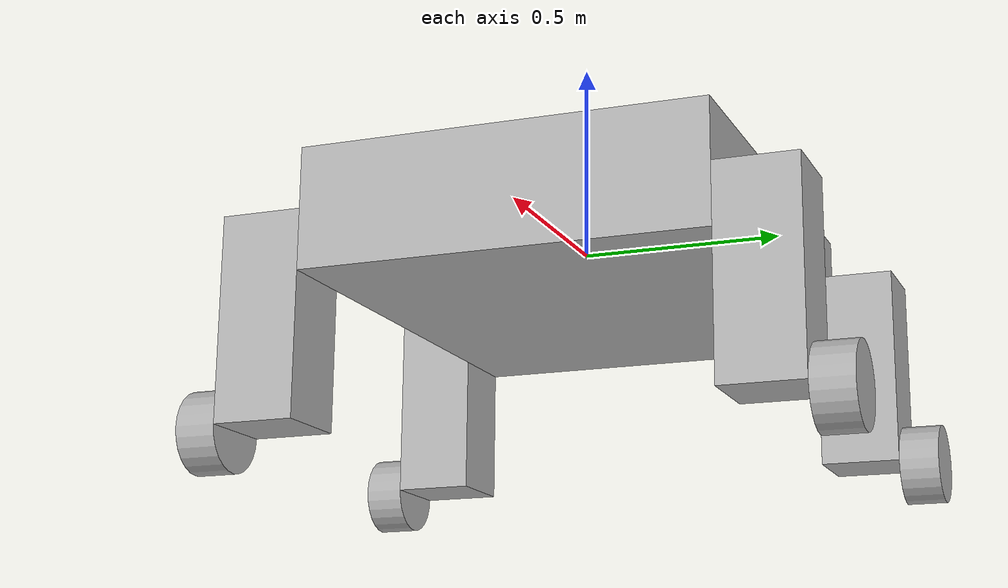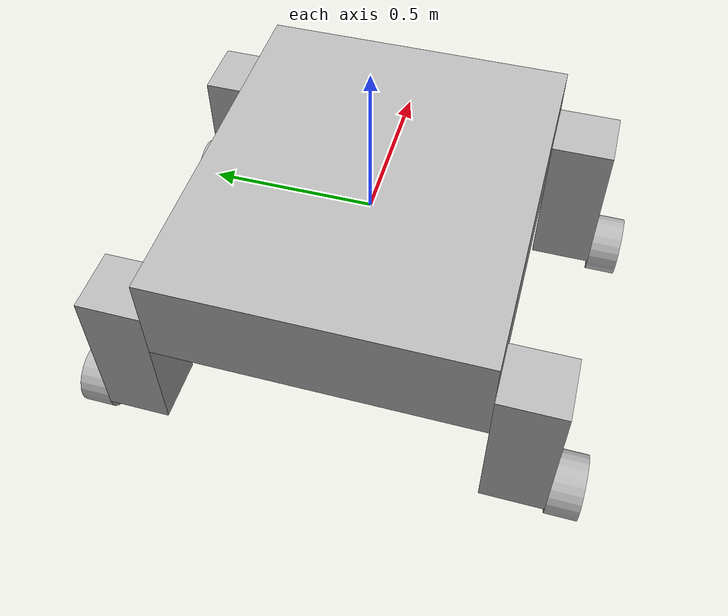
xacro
<?xml version="1.0"?>
<robot name="almu_rover" xmlns:xacro="http://www.ros.org/wiki/xacro">
    <xacro:include filename="$(find almu_rover)/urdf/materials.urdf.xacro" />

    <link name="base_link" />

    <link name="body">
        <visual>
            <geometry>
                <box size="1.2 1.0 0.3"/>
            </geometry>
            <material name="LightGrey">
                <color rgba="0.7 0.7 0.7 1.0"/>
            </material>
        </visual>
        <collision>
            <geometry>
                <box size="1.2 1.0 0.3"/>
            </geometry>
        </collision>
        <inertial>
            <mass value="1.0"/>
            <origin xyz="0 0 0" rpy="0 0 0"/>
            <inertia ixx="0.0001" ixy="0.0" ixz="0.0" iyy="0.0001" iyz="0.0" izz="0.0001"/>
        </inertial>
    </link>

    <joint name="body_joint" type="fixed">
        <parent link="base_link"/>
        <child link="body"/>
        <origin xyz="0 0 0" rpy="0 0 0"/>
        <axis xyz="0 0 0"/>
    </joint>

    <link name="front_left_arm">
        <visual>
            <geometry>
                <box size="0.5 0.2 0.2"/>
            </geometry>
            <material name="LightGrey">
                <color rgba="0.7 0.7 0.7 1.0"/>
            </material>
            <origin xyz="0.25 0 0" rpy="0 0 0"/>
        </visual>
        <collision>
            <geometry>
                <box size="0.5 0.2 0.2"/>
            </geometry>
        </collision>
        <inertial>
            <mass value="0.0001"/>
            <origin xyz="0 0 0" rpy="0 0 0"/>
            <inertia ixx="0.0001" ixy="0.0" ixz="0.0" iyy="0.0001" iyz="0.0" izz="0.0001"/>
        </inertial>
    </link>

    <joint name="front_left_joint" type="fixed">
        <parent link="body"/>
        <child link="front_left_arm"/>
        <origin xyz="0.5 0.6 0" rpy="0 ${pi / 2} 0"/>
        <axis xyz="0 0 0"/>
    </joint>

    <link name="front_right_arm">
        <visual>
            <geometry>
            <box size="0.5 0.2 0.2"/>
            </geometry>
            <material name="LightGrey">
                <color rgba="0.7 0.7 0.7 1.0"/>
            </material>
            <origin xyz="0.25 0 0" rpy="0 0 0"/>
        </visual>
        <collision>
            <geometry>
                <box size="0.5 0.2 0.2"/>
            </geometry>
        </collision>
        <inertial>
            <mass value="0.0001"/>
            <origin xyz="0 0 0" rpy="0 0 0"/>
            <inertia ixx="0.0001" ixy="0.0" ixz="0.0" iyy="0.0001" iyz="0.0" izz="0.0001"/>
        </inertial>
    </link>

    <joint name="front_right_joint" type="fixed">
        <parent link="body"/>
        <child link="front_right_arm"/>
        <origin xyz="0.5 -0.6 0" rpy="0 ${pi / 2} 0"/>
        <axis xyz="0 0 0"/>
    </joint>

    <link name="rear_left_arm">
        <visual>
            <geometry>
            <box size="0.5 0.2 0.2"/>
            </geometry>
            <material name="LightGrey">
                <color rgba="0.7 0.7 0.7 1.0"/>
            </material>
            <origin xyz="0.25 0 0" rpy="0 0 0"/>
        </visual>
        <collision>
            <geometry>
                <box size="0.5 0.2 0.2"/>
            </geometry>
            <origin xyz="0.25 0 0" rpy="0 0 0"/>
        </collision>
        <inertial>
            <mass value="0.0001"/>
            <origin xyz="0 0 0" rpy="0 0 0"/>
            <inertia ixx="0.0001" ixy="0.0" ixz="0.0" iyy="0.0001" iyz="0.0" izz="0.0001"/>
        </inertial>
    </link>

    <joint name="rear_left_joint" type="fixed">
        <parent link="body"/>
        <child link="rear_left_arm"/>
        <origin xyz="-0.5 0.6 0" rpy="0 ${pi / 2} 0"/>
        <axis xyz="0 0 0"/>
    </joint>

    <link name="rear_right_arm">
        <visual>
            <geometry>
            <box size="0.5 0.2 0.2"/>
            </geometry>
            <material name="LightGrey">
                <color rgba="0.7 0.7 0.7 1.0"/>
            </material>
            <origin xyz="0.25 0 0" rpy="0 0 0"/>
        </visual>
        <collision>
            <geometry>
                <box size="0.5 0.2 0.2"/>
            </geometry>
            <origin xyz="0.25 0 0" rpy="0 0 0"/>
        </collision>
        <inertial>
            <mass value="0.0001"/>
            <origin xyz="0 0 0" rpy="0 0 0"/>
            <inertia ixx="0.0001" ixy="0.0" ixz="0.0" iyy="0.0001" iyz="0.0" izz="0.0001"/>
        </inertial>
    </link>

    <joint name="rear_right_joint" type="fixed">
        <parent link="body"/>
        <child link="rear_right_arm"/>
        <origin xyz="-0.5 -0.6 0" rpy="0 ${pi / 2} 0"/>
        <axis xyz="0 0 0"/>
    </joint>

    <link name="front_left_wheel">
        <visual>
            <geometry>
                <cylinder radius="0.1" length="0.1"/>
            </geometry>
            <material name="LightGrey">
                <color rgba="0.7 0.7 0.7 1.0"/>
            </material>
            <origin xyz="0 0 0.05" rpy="0 0 0"/>
        </visual>
        <collision>
            <geometry>
                <cylinder radius="0.1" length="0.1"/>
            </geometry>
          <surface>
            <friction>
              <ode>
                <mu>1</mu>
                <mu2>1</mu2>
                <slip1>0.035</slip1>
                <slip2>0</slip2>
                <fdir1>0 0 1</fdir1>
              </ode>
              <bullet>
                <friction>1</friction>
                <friction2>1</friction2>
                <rolling_friction>0.1</rolling_friction>
                <spinning_friction>0.1</spinning_friction>
              </bullet>
            </friction>
          </surface>
            <origin xyz="0 0 0.05" rpy="0 0 0"/>
        </collision>
        <inertial>
            <mass value="0.0001"/>
            <origin xyz="0 0 0" rpy="0 0 0"/>
            <inertia ixx="0.0001" ixy="0.0" ixz="0.0" iyy="0.0001" iyz="0.0" izz="0.0001"/>
        </inertial>
    </link>

    <joint name="front_left_wheel_joint" type="revolute">
        <parent link="front_left_arm"/>
        <child link="front_left_wheel"/>
        <origin xyz="0.5 0.1 0" rpy="${-pi / 2} 0 0"/>
        <axis xyz="0 0 1"/>
        <limit effort="1000.0" lower="-1e300" upper="1e300" velocity="1e300"/>
    </joint>

    <link name="front_right_wheel">
        <visual>
            <geometry>
                <cylinder radius="0.1" length="0.1"/>
            </geometry>
            <material name="LightGrey">
                <color rgba="0.7 0.7 0.7 1.0"/>
            </material>
            <origin xyz="0 0 -0.05" rpy="0 0 0"/>
        </visual>
        <collision>
            <geometry>
                <cylinder radius="0.1" length="0.1"/>
            </geometry>
            <origin xyz="0 0 -0.05" rpy="0 0 0"/>
        </collision>
          <surface>
            <friction>
              <ode>
                <mu>1</mu>
                <mu2>1</mu2>
                <slip1>0.035</slip1>
                <slip2>0</slip2>
                <fdir1>0 0 1</fdir1>
              </ode>
              <bullet>
                <friction>1</friction>
                <friction2>1</friction2>
                <rolling_friction>0.1</rolling_friction>
                <spinning_friction>0.1</spinning_friction>
              </bullet>
            </friction>
          </surface>
        <inertial>
            <mass value="0.0001"/>
            <origin xyz="0 0 0" rpy="0 0 0"/>
            <inertia ixx="0.0001" ixy="0.0" ixz="0.0" iyy="0.0001" iyz="0.0" izz="0.0001"/>
        </inertial>
    </link>

    <joint name="front_right_wheel_joint" type="revolute">
        <parent link="front_right_arm"/>
        <child link="front_right_wheel"/>
        <origin xyz="0.5 -0.1 0" rpy="${-pi / 2} 0 0"/>
        <axis xyz="0 0 1"/>
        <limit effort="1000.0" lower="-1e300" upper="1e300" velocity="1e300"/>
    </joint>

    <link name="rear_left_wheel">
        <visual>
            <geometry>
                <cylinder radius="0.1" length="0.1"/>
            </geometry>
            <material name="LightGrey">
                <color rgba="0.7 0.7 0.7 1.0"/>
            </material>
            <origin xyz="0 0 0.05" rpy="0 0 0"/>
        </visual>
        <collision>
            <geometry>
                <cylinder radius="0.1" length="0.1"/>
            </geometry>
          <surface>
            <friction>
              <ode>
                <mu>1</mu>
                <mu2>1</mu2>
                <slip1>0.035</slip1>
                <slip2>0</slip2>
                <fdir1>0 0 1</fdir1>
              </ode>
              <bullet>
                <friction>1</friction>
                <friction2>1</friction2>
                <rolling_friction>0.1</rolling_friction>
                <spinning_friction>0.1</spinning_friction>
              </bullet>
            </friction>
          </surface>
            <origin xyz="0 0 0.05" rpy="0 0 0"/>
        </collision>
        <inertial>
            <mass value="0.0001"/>
            <origin xyz="0 0 0" rpy="0 0 0"/>
            <inertia ixx="0.0001" ixy="0.0" ixz="0.0" iyy="0.0001" iyz="0.0" izz="0.0001"/>
        </inertial>
    </link>

    <joint name="rear_left_wheel_joint" type="revolute">
        <parent link="rear_left_arm"/>
        <child link="rear_left_wheel"/>
        <origin xyz="0.5 0.1 0" rpy="${-pi / 2} 0 0"/>
        <axis xyz="0 0 1"/>
        <limit effort="1000.0" lower="-1e300" upper="1e300" velocity="1e300"/>
    </joint>

    <link name="rear_right_wheel">
        <visual>
            <geometry>
                <cylinder radius="0.1" length="0.1"/>
            </geometry>
            <material name="LightGrey">
                <color rgba="0.7 0.7 0.7 1.0"/>
            </material>
            <origin xyz="0 0 -0.05" rpy="0 0 0"/>
        </visual>
        <collision>
            <geometry>
                <cylinder radius="0.1" length="0.1"/>
            </geometry>
            <origin xyz="0 0 -0.05" rpy="0 0 0"/>
        </collision>
          <surface>
            <friction>
              <ode>
                <mu>1</mu>
                <mu2>1</mu2>
                <slip1>0.035</slip1>
                <slip2>0</slip2>
                <fdir1>0 0 1</fdir1>
              </ode>
              <bullet>
                <friction>1</friction>
                <friction2>1</friction2>
                <rolling_friction>0.1</rolling_friction>
                <spinning_friction>0.1</spinning_friction>
              </bullet>
            </friction>
          </surface>
        <inertial>
            <mass value="0.0001"/>
            <origin xyz="0 0 0" rpy="0 0 0"/>
            <inertia ixx="0.0001" ixy="0.0" ixz="0.0" iyy="0.0001" iyz="0.0" izz="0.0001"/>
        </inertial>
    </link>

    <joint name="rear_right_wheel_joint" type="revolute">
        <parent link="rear_right_arm"/>
        <child link="rear_right_wheel"/>
        <origin xyz="0.5 -0.1 0" rpy="${-pi / 2} 0 0"/>
        <axis xyz="0 0 1"/>
        <limit effort="1000.0" lower="-1e300" upper="1e300" velocity="1e300"/>
    </joint>

    <gazebo>
        <plugin
            filename="ignition-gazebo-diff-drive-system"
            name="ignition::gazebo::systems::DiffDrive">
            <left_joint>front_left_wheel_joint</left_joint>
            <left_joint>rear_left_wheel_joint</left_joint>
            <right_joint>front_right_wheel_joint</right_joint>
            <right_joint>rear_right_wheel_joint</right_joint>
            <wheel_separation>1.2</wheel_separation>
            <wheel_radius>0.1</wheel_radius>
            <odom_publish_frequency>30</odom_publish_frequency>
            <max_linear_acceleration>1</max_linear_acceleration>
            <min_linear_acceleration>-1</min_linear_acceleration>
            <max_angular_acceleration>2</max_angular_acceleration>
            <min_angular_acceleration>-2</min_angular_acceleration>
            <max_linear_velocity>1.0</max_linear_velocity>
            <min_linear_velocity>-1.0</min_linear_velocity>
            <max_angular_velocity>1</max_angular_velocity>
            <min_angular_velocity>-1</min_angular_velocity>
            <frame_id>odom</frame_id>
            <child_frame_id>base_link</child_frame_id>
        </plugin>

        <plugin
            filename="ignition-gazebo-joint-state-publisher-system"
            name="ignition::gazebo::systems::JointStatePublisher">
        </plugin>
    </gazebo>
</robot>

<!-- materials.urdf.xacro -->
<robot>

    <material name="black">
    <color rgba="0.0 0.0 0.0 1.0"/>
    </material>

    <material name="blue">
    <color rgba="0.0 0.0 0.8 1.0"/>
    </material>

    <material name="green">
    <color rgba="0.0 0.8 0.0 1.0"/>
    </material>

    <material name="grey">
    <color rgba="0.2 0.2 0.2 1.0"/>
    </material>

    <material name="orange">
    <color rgba="${255/255} ${108/255} ${10/255} 1.0"/>
    </material>

    <material name="brown">
    <color rgba="${222/255} ${207/255} ${195/255} 1.0"/>
    </material>

    <material name="red">
    <color rgba="0.8 0.0 0.0 1.0"/>
    </material>

    <material name="white">
    <color rgba="1.0 1.0 1.0 1.0"/>
    </material>

</robot>
